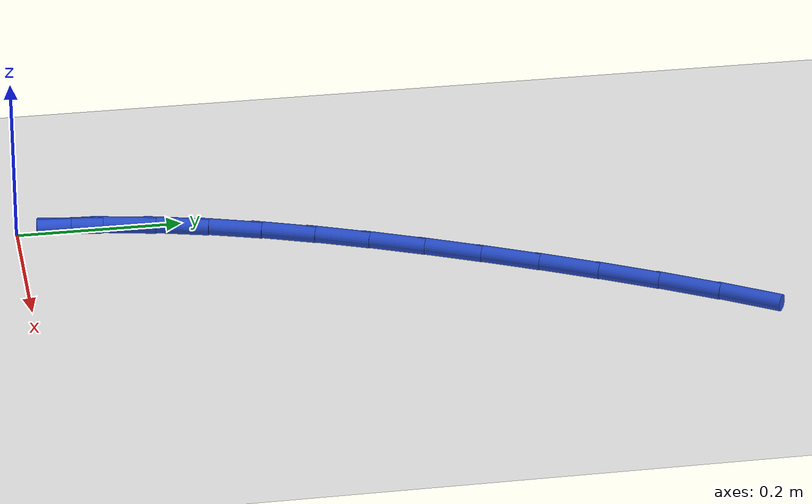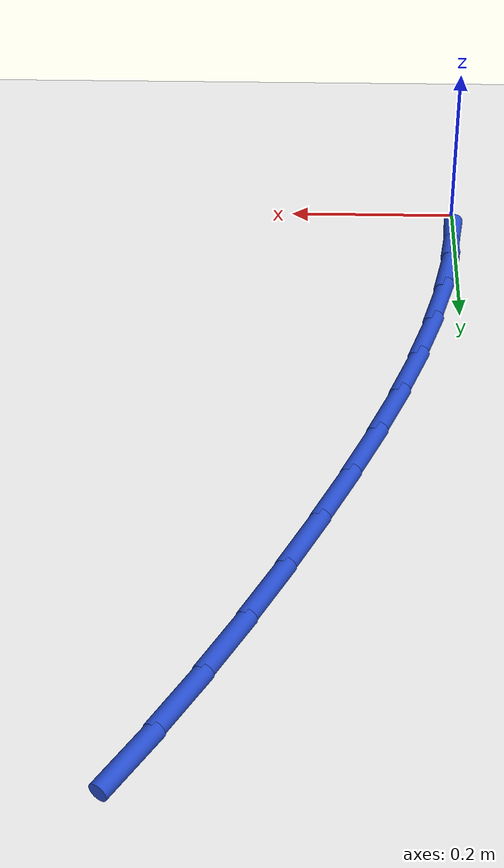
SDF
<sdf version="1.6">
 <world name="default">
  <model name="ground_plane">
   <static>1</static>
   <link name="link">
    <collision name="collision">
     <geometry><plane><normal>0 0 1</normal><size>100 100</size></plane></geometry>
     <surface><friction><ode><mu>100</mu><mu2>50</mu2></ode></friction></surface>
    </collision>
    <visual name="visual">
     <cast_shadows>0</cast_shadows>
     <geometry><plane><normal>0 0 1</normal><size>100 100</size></plane></geometry>
     <material>
      <script><uri>file://media/materials/scripts/gazebo.material</uri><name>Gazebo/WhiteGlow</name></script>
     </material>
    </visual>
   </link>
  </model>
  <model name="line">
   <link name="link_1">
    <pose>0.0038004233254297264 0.0644702413400496 0.01 0 1.57 1.4378437472111771</pose>
    <collision name="collision">
     <geometry><cylinder><radius>0.01</radius><length>0.08</length></cylinder></geometry>
    </collision>
    <visual name="visual">
     <material>
      <script><name>Gazebo/Blue</name><uri>file://media/materials/scripts/gazebo.material</uri></script>
     </material>
     <geometry><cylinder><radius>0.01</radius><length>0.08</length></cylinder></geometry>
    </visual>
   </link>
   <link name="link_2">
    <pose>0.012314696934645883 0.12813239227548837 0.01 0 1.57 1.369589974558412</pose>
    <collision name="collision">
     <geometry><cylinder><radius>0.01</radius><length>0.08</length></cylinder></geometry>
    </collision>
    <visual name="visual">
     <material>
      <script><name>Gazebo/Blue</name><uri>file://media/materials/scripts/gazebo.material</uri></script>
     </material>
     <geometry><cylinder><radius>0.01</radius><length>0.08</length></cylinder></geometry>
    </visual>
   </link>
   <link name="link_3">
    <pose>0.025182750282667195 0.19122151768549428 0.01 0 1.57 1.308288760980639</pose>
    <collision name="collision">
     <geometry><cylinder><radius>0.01</radius><length>0.08</length></cylinder></geometry>
    </collision>
    <visual name="visual">
     <material>
      <script><name>Gazebo/Blue</name><uri>file://media/materials/scripts/gazebo.material</uri></script>
     </material>
     <geometry><cylinder><radius>0.01</radius><length>0.08</length></cylinder></geometry>
    </visual>
   </link>
   <link name="link_4">
    <pose>0.04204451282451229 0.25397268244924515 0.01 0 1.57 1.2546207686789852</pose>
    <collision name="collision">
     <geometry><cylinder><radius>0.01</radius><length>0.08</length></cylinder></geometry>
    </collision>
    <visual name="visual">
     <material>
      <script><name>Gazebo/Blue</name><uri>file://media/materials/scripts/gazebo.material</uri></script>
     </material>
     <geometry><cylinder><radius>0.01</radius><length>0.08</length></cylinder></geometry>
    </visual>
   </link>
   <link name="link_5">
    <pose>0.06253991401519983 0.31662095144591873 0.01 0 1.57 1.2088691179238993</pose>
    <collision name="collision">
     <geometry><cylinder><radius>0.01</radius><length>0.08</length></cylinder></geometry>
    </collision>
    <visual name="visual">
     <material>
      <script><name>Gazebo/Blue</name><uri>file://media/materials/scripts/gazebo.material</uri></script>
     </material>
     <geometry><cylinder><radius>0.01</radius><length>0.08</length></cylinder></geometry>
    </visual>
   </link>
   <link name="link_6">
    <pose>0.0863088833097484 0.37940138955469266 0.01 0 1.57 1.171010500356226</pose>
    <collision name="collision">
     <geometry><cylinder><radius>0.01</radius><length>0.08</length></cylinder></geometry>
    </collision>
    <visual name="visual">
     <material>
      <script><name>Gazebo/Blue</name><uri>file://media/materials/scripts/gazebo.material</uri></script>
     </material>
     <geometry><cylinder><radius>0.01</radius><length>0.08</length></cylinder></geometry>
    </visual>
   </link>
   <link name="link_7">
    <pose>0.11299135016317667 0.4425490616547449 0.01 0 1.57 1.140811659797161</pose>
    <collision name="collision">
     <geometry><cylinder><radius>0.01</radius><length>0.08</length></cylinder></geometry>
    </collision>
    <visual name="visual">
     <material>
      <script><name>Gazebo/Blue</name><uri>file://media/materials/scripts/gazebo.material</uri></script>
     </material>
     <geometry><cylinder><radius>0.01</radius><length>0.08</length></cylinder></geometry>
    </visual>
   </link>
   <link name="link_8">
    <pose>0.14222724403050335 0.5062990326252533 0.01 0 1.57 1.1177599757804364</pose>
    <collision name="collision">
     <geometry><cylinder><radius>0.01</radius><length>0.08</length></cylinder></geometry>
    </collision>
    <visual name="visual">
     <material>
      <script><name>Gazebo/Blue</name><uri>file://media/materials/scripts/gazebo.material</uri></script>
     </material>
     <geometry><cylinder><radius>0.01</radius><length>0.08</length></cylinder></geometry>
    </visual>
   </link>
   <link name="link_9">
    <pose>0.17366193074468758 0.5708724417894008 0.01 0 1.57 1.0973197759468494</pose>
    <collision name="collision">
     <geometry><cylinder><radius>0.01</radius><length>0.08</length></cylinder></geometry>
    </collision>
    <visual name="visual">
     <material>
      <script><name>Gazebo/Blue</name><uri>file://media/materials/scripts/gazebo.material</uri></script>
     </material>
     <geometry><cylinder><radius>0.01</radius><length>0.08</length></cylinder></geometry>
    </visual>
   </link>
   <link name="link_10">
    <pose>0.20708796065859705 0.6361134079070548 0.01 0 1.57 1.0746401857733987</pose>
    <collision name="collision">
     <geometry><cylinder><radius>0.01</radius><length>0.08</length></cylinder></geometry>
    </collision>
    <visual name="visual">
     <material>
      <script><name>Gazebo/Blue</name><uri>file://media/materials/scripts/gazebo.material</uri></script>
     </material>
     <geometry><cylinder><radius>0.01</radius><length>0.08</length></cylinder></geometry>
    </visual>
   </link>
   <link name="link_11">
    <pose>0.24245853795792874 0.7014545268510998 0.01 0 1.57 1.0491245721209443</pose>
    <collision name="collision">
     <geometry><cylinder><radius>0.01</radius><length>0.08</length></cylinder></geometry>
    </collision>
    <visual name="visual">
     <material>
      <script><name>Gazebo/Blue</name><uri>file://media/materials/scripts/gazebo.material</uri></script>
     </material>
     <geometry><cylinder><radius>0.01</radius><length>0.08</length></cylinder></geometry>
    </visual>
   </link>
   <link name="link_12">
    <pose>0.2797350035456447 0.7663075518831954 0.01 0 1.57 1.0203192356909945</pose>
    <collision name="collision">
     <geometry><cylinder><radius>0.01</radius><length>0.08</length></cylinder></geometry>
    </collision>
    <visual name="visual">
     <material>
      <script><name>Gazebo/Blue</name><uri>file://media/materials/scripts/gazebo.material</uri></script>
     </material>
     <geometry><cylinder><radius>0.01</radius><length>0.08</length></cylinder></geometry>
    </visual>
   </link>
   <link name="link_13">
    <pose>0.31887869832470656 0.8300842362650012 0.01 0 1.57 0.9876669341359491</pose>
    <collision name="collision">
     <geometry><cylinder><radius>0.01</radius><length>0.08</length></cylinder></geometry>
    </collision>
    <visual name="visual">
     <material>
      <script><name>Gazebo/Blue</name><uri>file://media/materials/scripts/gazebo.material</uri></script>
     </material>
     <geometry><cylinder><radius>0.01</radius><length>0.08</length></cylinder></geometry>
    </visual>
   </link>
   <link name="link_111">
    <pose>0.003884098416843354 0.064347999764752 0.01 0 1.57 1.5105086477651335</pose>
    <collision name="collision">
     <geometry><cylinder><radius>0.01</radius><length>0.08</length></cylinder></geometry>
    </collision>
    <visual name="visual">
     <material>
      <script><name>Gazebo/Blue</name><uri>file://media/materials/scripts/gazebo.material</uri></script>
     </material>
     <geometry><cylinder><radius>0.01</radius><length>0.08</length></cylinder></geometry>
    </visual>
   </link>
  </model>
 </world>
</sdf>
